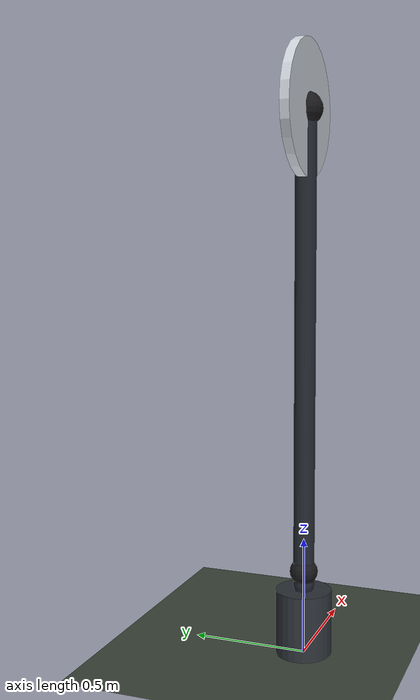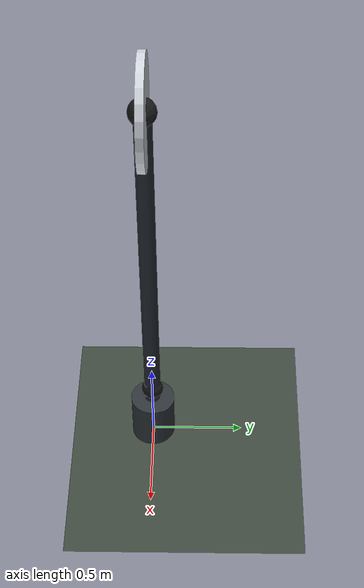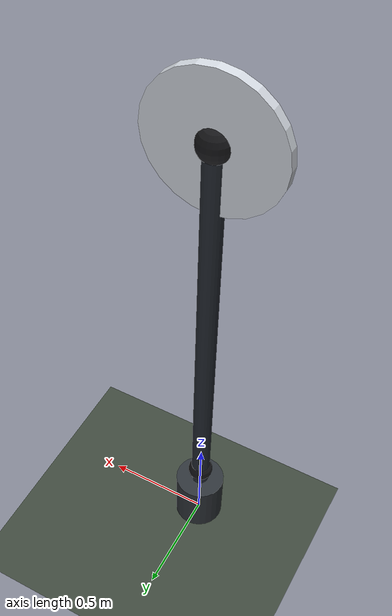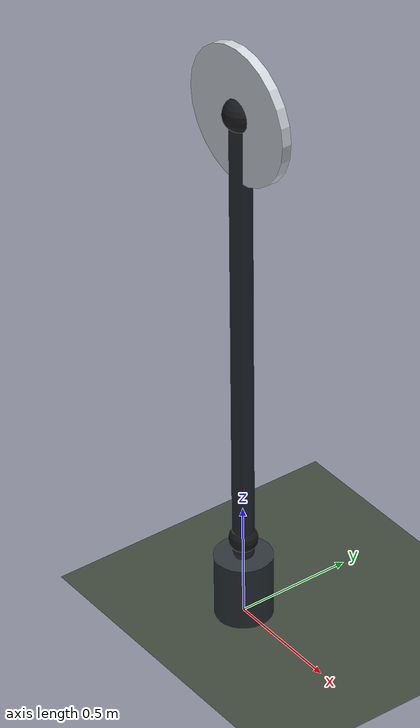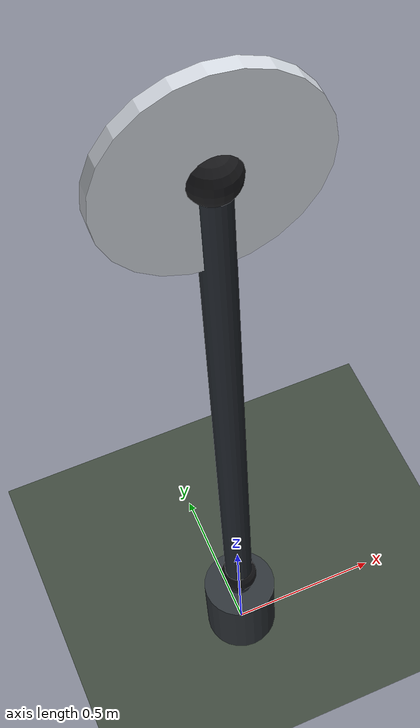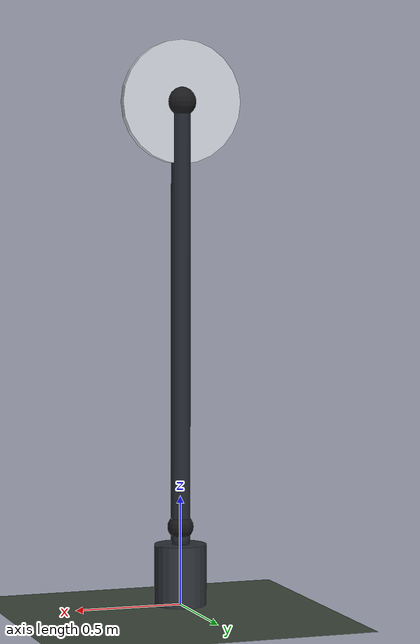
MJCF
<mujoco model="wheel_on_stick">
    <compiler angle="radian"/>
    <option timestep="0.001" gravity="0 0 -9.81"/>

    <asset>
        <texture name="sky" type="skybox" builtin="gradient"
                 rgb1="0.70 0.79 0.90" rgb2="0.96 0.98 1.00"
                 width="512" height="3072"/>
        <texture name="ground_tex" type="2d" builtin="checker"
                 rgb1="0.28 0.32 0.27" rgb2="0.20 0.24 0.20"
                 width="512" height="512"/>
        <material name="ground_mat" texture="ground_tex"
                  texrepeat="10 10" reflectance="0.08"
                  specular="0.10" shininess="0.20"/>
        <material name="stick_mat" rgba="0.14 0.16 0.19 1.0"
                  specular="0.20" shininess="0.28"/>
        <material name="wheel_mat" rgba="0.82 0.84 0.87 1.0"
                  specular="0.80" shininess="0.90"/>
        <material name="hub_mat" rgba="0.10 0.10 0.11 1.0"
                  specular="0.30" shininess="0.50"/>
        <material name="base_mat" rgba="0.18 0.20 0.22 1.0"
                  specular="0.25" shininess="0.35"/>
    </asset>

    <visual>
        <map znear="0.001" zfar="80"/>
        <headlight ambient="0.30 0.30 0.33"
                   diffuse="0.62 0.62 0.62"
                   specular="0.20 0.20 0.20"/>
        <rgba haze="0.88 0.93 1.00 1"/>
    </visual>

    <worldbody>
        <light name="sun" pos="3 -5 6"
               dir="-0.4 0.6 -1"
               directional="true"
               castshadow="true"
               diffuse="0.95 0.95 0.92"
               specular="0.15 0.15 0.15"/>
        <light name="fill" pos="-3 2 3"
               directional="false"
               castshadow="false"
               diffuse="0.35 0.38 0.45"
               specular="0 0 0"/>

        <geom name="ground" type="plane"
              size="40 40 0.1"
              material="ground_mat"
              friction="1.2 0.04 0.002"/>

        <!-- Visual pedestal under the hinge -->
        <geom name="pedestal" type="cylinder"
              pos="0 0 0.14"
              size="0.12 0.14"
              contype="0" conaffinity="0"
              material="base_mat"/>

        <camera name="side"
                pos="0 -4 1.7"
                quat="0.9239 0.3827 0 0"/>

        <body name="stick" pos="0 0 0.3">
            <joint name="stick_hinge"
                   type="hinge"
                   axis="0 1 0"
                   damping="1.2"
                   armature="0.025"
                   frictionloss="0.03"/>

            <geom name="stick_geom" type="capsule"
                  fromto="0 0 0  0 0 2"
                  mass="1.2"
                  size="0.045"
                  material="stick_mat"
                  contype="0"
                  conaffinity="0"/>

            <!-- Small physical mass near the base to avoid an unrealistically top-heavy link -->
            <geom name="base_counterweight" type="sphere"
                  pos="0 0 0.06"
                  size="0.06"
                  mass="0.45"
                  material="hub_mat"
                  contype="0"
                  conaffinity="0"/>

            <body name="wheel" pos="0 0 2">
                <joint name="wheel_spin"
                       type="hinge"
                       axis="0 1 0"
                       damping="0.08"
                       armature="0.01"
                       frictionloss="0.002"/>

                <geom name="wheel_rim" type="cylinder"
                      size="0.28 0.02"
                      mass="2.6"
                      quat="0.7071 0.7071 0 0"
                      material="wheel_mat"
                      contype="0"
                      conaffinity="0"/>

                <geom name="wheel_hub" type="sphere"
                      size="0.07"
                      mass="0.25"
                      material="hub_mat"
                      contype="0"
                      conaffinity="0"/>
            </body>
        </body>
    </worldbody>

    <actuator>
        <motor name="wheel_motor"
               joint="wheel_spin"
               ctrlrange="-1000 1000"/>

        <motor name="base_motor"
               joint="stick_hinge"
               ctrlrange="-200 200"/>
    </actuator>
</mujoco>
